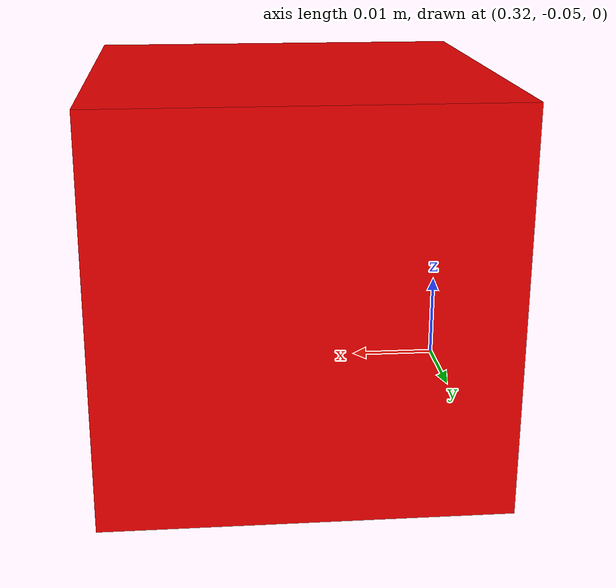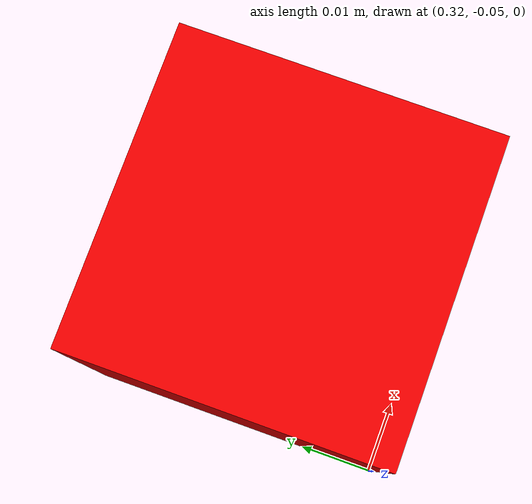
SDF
<?xml version="1.0" ?>
<sdf version="1.8">
  <model name="red_box_multi_b">
    <pose>0.34 -0.03 0.02 0 0 0</pose>
    <link name="box_link">
      <inertial>
        <mass>0.08</mass>
        <inertia>
          <ixx>0.00006</ixx> <ixy>0</ixy> <ixz>0</ixz>
          <iyy>0.00006</iyy> <iyz>0</iyz>
          <izz>0.00006</izz>
        </inertia>
      </inertial>
      <collision name="collision">
        <geometry>
          <box>
            <size>0.04 0.04 0.04</size>
          </box>
        </geometry>
      </collision>
      <visual name="visual">
        <geometry>
          <box>
            <size>0.04 0.04 0.04</size>
          </box>
        </geometry>
        <material>
          <ambient>1 0 0 1</ambient>
          <diffuse>1 0 0 1</diffuse>
          <specular>0.2 0.2 0.2 1</specular>
        </material>
      </visual>
    </link>
  </model>
</sdf>
